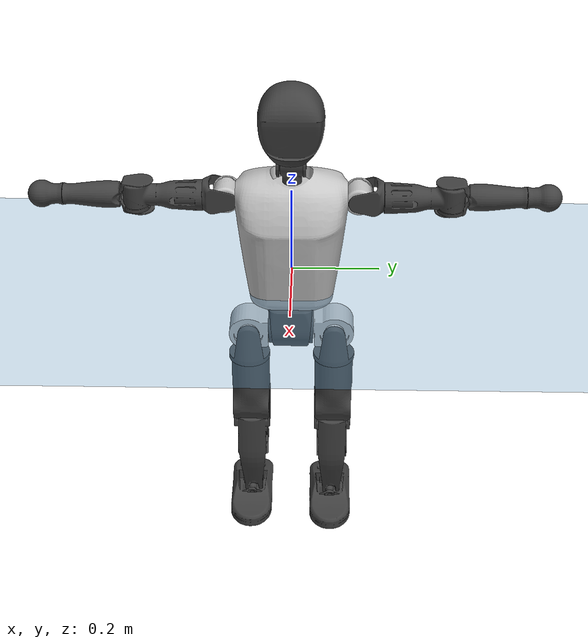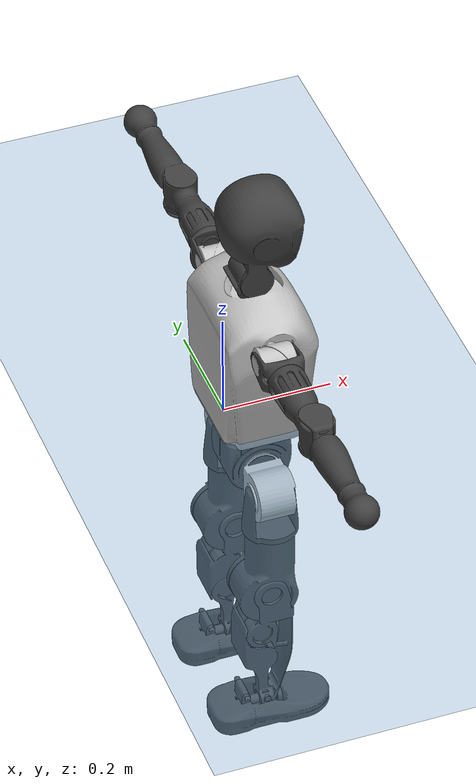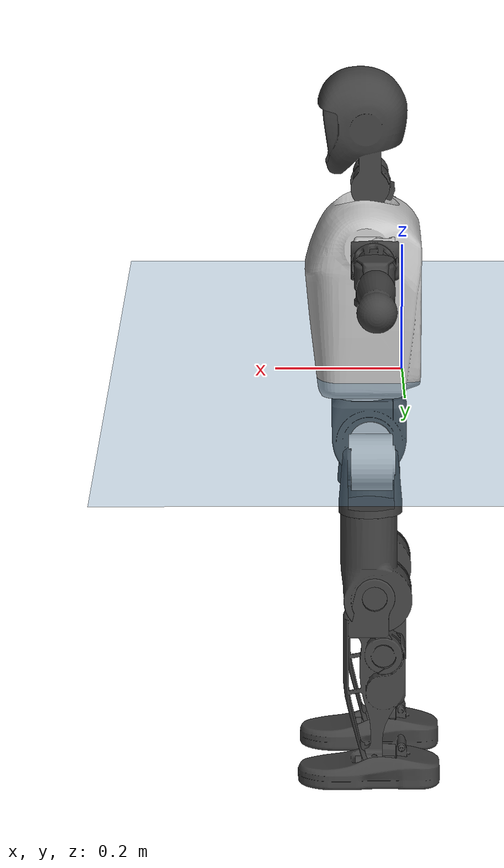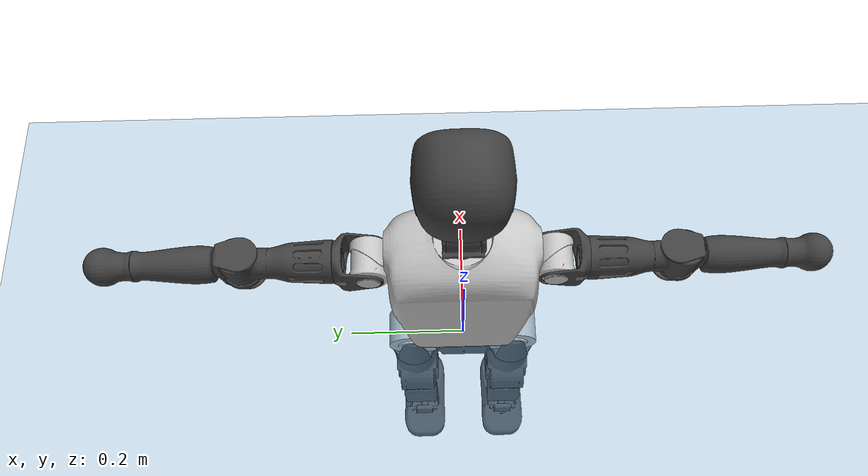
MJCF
<mujoco model="T1">
  <compiler angle="radian" assetdir="assets" balanceinertia="true" inertiafromgeom="false"/>

  <option timestep="0.005" density="1.2" viscosity="2e-05"/>

  <size nkey="1"/>

  <visual>
    <quality shadowsize="8192"/>
    <map shadowclip="0.5"/>
  </visual>

  <default>
    <default class="/">
      <joint armature="0.01" damping="0.01" frictionloss="0.1"/>
      <geom contype="0" conaffinity="0" group="1" solref="-1000 -80"/>
      <site size="0.01 0.005 0.005" group="5"/>
      <general forcelimited="true" biastype="affine" gainprm="25" biasprm="0 -25 -0.6"/>
      <default class="t1">
        <geom rgba="0.25 0.25 0.25 1"/>
        <default class="visual">
          <geom type="mesh" group="2"/>
        </default>
        <default class="collision">
          <geom group="3"/>
        </default>
        <default class="foot">
          <geom size="0.1115 0.05 0.015" type="box" condim="6" group="4" priority="1" solimp="0.015 1 0.015"/>
        </default>
        <default class="reward_collision_sphere">
          <geom group="5" rgba="1 0 0 1"/>
        </default>
      </default>
    </default>
  </default>

  <asset>
    <texture type="skybox" colorspace="auto" name="//unnamed_texture_0" builtin="gradient" rgb1="0.95 0.95 0.95" rgb2="0.95 0.95 0.95" width="100" height="600"/>
    <texture type="2d" colorspace="auto" name="texplane" builtin="checker" rgb1="0.345 0.575 0.748" rgb2="0.345 0.575 0.748" markrgb="1 1 1" width="512" height="512"/>
    <material name="MatPlane" class="/" texture="texplane" texuniform="true" texrepeat="2 2" specular="0.9"/>
    <mesh name="Trunk" class="/" file="Trunk.stl"/>
    <mesh name="H1" class="/" file="H1.stl"/>
    <mesh name="H2" class="/" file="H2.stl"/>
    <mesh name="AL1" class="/" file="AL1.stl"/>
    <mesh name="AL2" class="/" file="AL2.stl"/>
    <mesh name="AL3" class="/" file="AL3.stl"/>
    <mesh name="left_hand_link" class="/" file="left_hand_link.stl"/>
    <mesh name="AR1" class="/" file="AR1.stl"/>
    <mesh name="AR2" class="/" file="AR2.stl"/>
    <mesh name="AR3" class="/" file="AR3.stl"/>
    <mesh name="right_hand_link" class="/" file="right_hand_link.stl"/>
    <mesh name="Waist" class="/" file="Waist.stl"/>
    <mesh name="Hip_Pitch_Left" class="/" file="Hip_Pitch_Left.stl"/>
    <mesh name="Hip_Roll_Left" class="/" file="Hip_Roll_Left.stl"/>
    <mesh name="Hip_Yaw_Left" class="/" file="Hip_Yaw_Left.stl"/>
    <mesh name="Shank_Left" class="/" file="Shank_Left.stl"/>
    <mesh name="Ankle_Cross_Left" class="/" file="Ankle_Cross_Left.stl"/>
    <mesh name="left_foot_link" class="/" file="left_foot_link.stl"/>
    <mesh name="Hip_Pitch_Right" class="/" file="Hip_Pitch_Right.stl"/>
    <mesh name="Hip_Roll_Right" class="/" file="Hip_Roll_Right.stl"/>
    <mesh name="Hip_Yaw_Right" class="/" file="Hip_Yaw_Right.stl"/>
    <mesh name="Shank_Right" class="/" file="Shank_Right.stl"/>
    <mesh name="Ankle_Cross_Right" class="/" file="Ankle_Cross_Right.stl"/>
    <mesh name="right_foot_link" class="/" file="right_foot_link.stl"/>
  </asset>

  <worldbody>
    <geom name="floor" class="/" size="100 100 0.125" type="plane" group="0" material="MatPlane"/>
    <light name="toplight_shadow" class="/" pos="0 0 5" dir="0.0990148 0.0990148 -0.990148" type="directional" ambient="0.04 0.04 0.04" diffuse="0.55 0.55 0.55" specular="0.12 0.12 0.12"/>
    <light name="toplight_fill" class="/" pos="0 0 5" dir="0.0990148 0.0990148 -0.990148" type="directional" castshadow="false" ambient="0.04 0.04 0.04" diffuse="0.3 0.3 0.3" specular="0.08 0.08 0.08"/>
    <body name="trunk" childclass="t1" pos="0.000458746 0.000621121 0.00162763" quat="1 -0.000224129 7.48003e-05 6.92929e-06">
      <inertial pos="0.0419917 -0.00261894 0.10098" quat="0.999948 0.000394935 -0.0101272 0.0011171" mass="8.3377" diaginertia="0.0292243 0.0537399 0.0454564"/>
      <joint name="//unnamed_joint_0" type="free" armature="0" damping="0" frictionloss="0"/>
      <geom name="//unnamed_geom_1" class="visual" rgba="0.76 0.76 0.76 1" mesh="Trunk"/>
      <geom name="//unnamed_geom_2" class="collision" size="0.0671705 0.0895607 0.134341" pos="0.0475796 0 0.115696" type="box"/>
      <geom name="//unnamed_geom_3" class="reward_collision_sphere" size="0.102995" pos="0.0475796 0 0.096413"/>
      <geom name="//unnamed_geom_4" class="reward_collision_sphere" size="0.0134341" pos="0.0475796 0.0790242 0"/>
      <geom name="//unnamed_geom_5" class="reward_collision_sphere" size="0.0134341" pos="0.0475796 -0.0790242 0"/>
      <geom name="//unnamed_geom_6" class="reward_collision_sphere" size="0.0134341" pos="0.0475796 0.0994775 0.173543"/>
      <geom name="//unnamed_geom_7" class="reward_collision_sphere" size="0.0134341" pos="0.0475796 -0.0994775 0.173543"/>
      <site name="imu" pos="-0.0135314 0.0135301 -0.0134985" size="0.00895607"/>
      <camera name="track" pos="0 -1.85939 0" quat="0.707107 0.707107 0 0" mode="trackcom"/>
      <camera name="ego_camera" pos="0.0967452 0 0.404935" quat="-0.5 -0.5 0.5 0.5"/>
      <body name="H1" pos="0.0489639 0.000795298 0.234574" quat="0.999999 -0.00121686 -0.000635848 0.000242143">
        <inertial pos="-0.000937884 -0.00130306 0.0546878" quat="0.762425 -0.0124975 0.00476849 0.646938" mass="0.340042" diaginertia="7.60338e-05 0.000158457 0.000129408"/>
        <joint name="AAHead_yaw" pos="0 0 0" axis="0.00522058 0.000233001 0.999986" range="-1.58909 1.55977" armature="0.0102979" damping="0" frictionloss="0.0896376"/>
        <geom name="//unnamed_geom_8" class="visual" mesh="H1"/>
        <body name="H2" pos="0.00213144 -0.00152517 0.0593181" quat="1 -0.000196872 -0.000137765 -3.1604e-05">
          <inertial pos="0.00491749 0.000621844 0.0946985" quat="0.988934 0.102195 -0.0758221 -0.0762712" mass="0.457355" diaginertia="0.000639869 0.00132262 0.00144563"/>
          <joint name="Head_pitch" pos="0 0 0" axis="0.00826257 -0.999953 -0.00513558" stiffness="0.00328724" range="-1.20211 0.327579" armature="0.00879673" damping="0.000422556" frictionloss="0.0917078"/>
          <geom name="//unnamed_geom_9" class="visual" mesh="H2"/>
          <geom name="//unnamed_geom_10" class="collision" size="0.0716485" pos="0.00792994 0 0.106054"/>
          <geom name="//unnamed_geom_11" class="reward_collision_sphere" size="0.0806046" pos="0.0158599 0 0.096413"/>
        </body>
      </body>
      <body name="AL1" pos="0.0450169 0.0994872 0.210527" quat="0.999999 0.00100627 0.000876485 -0.000321022">
        <inertial pos="-0.00018003 0.0439956 4.0481e-05" quat="0.50597 0.493846 -0.502009 0.498093" mass="0.382688" diaginertia="0.000435922 0.000904853 0.000245287"/>
        <joint name="Left_Shoulder_Pitch" pos="0 0 0" axis="0.000281244 0.999999 0.00114068" range="-3.30889 1.22213" armature="0.00933474" damping="0.0114288" frictionloss="0.0833686"/>
        <geom name="//unnamed_geom_12" class="visual" rgba="0.76 0.76 0.76 1" mesh="AL1"/>
        <body name="AL2" pos="-0.000228847 0.0445276 5.31292e-05" quat="1 -2.01954e-05 6.71995e-05 3.56945e-06">
          <inertial pos="0.00251627 0.0362763 0.00229391" quat="0.487243 0.512972 -0.489168 0.510068" mass="0.121106" diaginertia="0.000128887 0.000236779 0.000151402"/>
          <joint name="Left_Shoulder_Roll" pos="0 0 0" axis="-0.999994 0.00169324 -0.00302672" stiffness="0.00249843" range="-1.51753 1.7945" armature="0.00786039" damping="0" frictionloss="0.090298"/>
          <geom name="//unnamed_geom_13" class="visual" mesh="AL2"/>
          <body name="AL3" pos="0.00280993 0.0569839 -0.00158532" quat="1 -0.000239052 -0.000351537 0.0001693">
            <inertial pos="0.00130729 0.0794169 -0.000210747" quat="0.706187 0.708022 -0.000709564 0.00206539" mass="0.74516" diaginertia="0.00397673 0.00913331 0.000504353"/>
            <joint name="Left_Elbow_Pitch" pos="0 0 0" axis="-0.0131721 -0.999913 0.00089402" range="-2.21888 2.31532" armature="0.00778661" damping="0.00547681" frictionloss="0.0811546"/>
            <geom name="//unnamed_geom_14" class="visual" mesh="AL3"/>
            <geom name="//unnamed_geom_15" class="collision" size="0.0268682 0.0671705" pos="0 0.0464848 0" quat="0.707105 0.707108 0 0" type="cylinder"/>
            <geom name="//unnamed_geom_16" class="reward_collision_sphere" size="0.0322418"/>
            <body name="left_hand_link" pos="-0.00132868 0.139171 0.00257236" quat="1 3.15394e-06 -5.96406e-05 6.74062e-06">
              <inertial pos="-0.000584018 0.101045 0.00100885" quat="0.707865 0.706347 -0.000456509 0.000226113" mass="0.233901" diaginertia="0.00262292 0.00577403 0.000178231"/>
              <joint name="Left_Elbow_Yaw" pos="0 0 0" axis="-0.00185022 -0.00148444 0.999997" range="-2.44792 0.00801814" armature="0.0102802" damping="0.0139944" frictionloss="0.0848415"/>
              <geom name="//unnamed_geom_17" class="visual" mesh="left_hand_link"/>
              <geom name="//unnamed_geom_18" class="collision" size="0.0268682 0.0783656" pos="0 0.120861 0" quat="0.707105 0.707108 0 0" type="cylinder"/>
              <geom name="//unnamed_geom_19" class="reward_collision_sphere" size="0.0447803"/>
              <geom name="//unnamed_geom_20" class="reward_collision_sphere" size="0.0313462" pos="0 0.102267 0"/>
              <geom name="//unnamed_geom_21" class="reward_collision_sphere" size="0.0313462" pos="0 0.199885 0"/>
            </body>
          </body>
        </body>
      </body>
      <body name="AR1" pos="0.0428057 -0.0963537 0.211666" quat="1 -0.000141987 0.000640167 -7.50301e-05">
        <inertial pos="-0.00356291 -0.0426294 0.00175207" quat="0.498598 0.490239 -0.514933 0.495893" mass="0.386275" diaginertia="0.00042909 0.00089836 0.000253837"/>
        <joint name="Right_Shoulder_Pitch" pos="0 0 0" axis="-0.000409082 -0.999996 -0.00279997" stiffness="0.00597001" range="-1.22517 3.3067" armature="0.00914348" damping="0.00892867" frictionloss="0.0813076"/>
        <geom name="//unnamed_geom_22" class="visual" rgba="0.76 0.76 0.76 1" mesh="AR1"/>
        <body name="AR2" pos="0.000436718 -0.0418071 9.69965e-05" quat="1 0.000453842 0.000251134 -0.000213716">
          <inertial pos="0.00223038 -0.0358848 0.00126082" quat="0.512038 0.488182 -0.511634 0.487572" mass="0.114702" diaginertia="0.000126043 0.000247783 0.000148894"/>
          <joint name="Right_Shoulder_Roll" pos="0 0 0" axis="-0.999934 0.0111611 -0.00263295" range="-1.72352 1.62557" armature="0.00810434" damping="0.0142977" frictionloss="0.0859371"/>
          <geom name="//unnamed_geom_23" class="visual" mesh="AR2"/>
          <body name="AR3" pos="5.2991e-05 -0.0553464 -0.00210382" quat="1 8.08959e-05 8.72807e-05 -3.13649e-05">
            <inertial pos="-0.000117309 -0.0821445 0.00243107" quat="0.707283 0.706862 -0.00649089 -0.00738794" mass="0.720261" diaginertia="0.00404274 0.00863554 0.000529552"/>
            <joint name="Right_Elbow_Pitch" pos="0 0 0" axis="0.00138132 0.999998 0.0012293" range="-2.24647 2.22948" armature="0.00912749" damping="0.0194124" frictionloss="0.0891922"/>
            <geom name="//unnamed_geom_24" class="visual" mesh="AR3"/>
            <geom name="//unnamed_geom_25" class="collision" size="0.0268682 0.0671705" pos="0 -0.0464848 0" quat="0.707105 0.707108 0 0" type="cylinder"/>
            <geom name="//unnamed_geom_26" class="reward_collision_sphere" size="0.0322418"/>
            <body name="right_hand_link" pos="0.000366597 -0.136383 0.000183026" quat="1 -4.33387e-05 -0.000167879 -5.72387e-05">
              <inertial pos="-0.000681525 -0.100752 -0.00124269" quat="0.706335 0.707877 0.000154555 -0.000417079" mass="0.23612" diaginertia="0.00251781 0.00562489 0.000174504"/>
              <joint name="Right_Elbow_Yaw" pos="0 0 0" axis="0.00059453 -0.000579165 1" stiffness="0.00054349" range="-0.0146998 2.44588" armature="0.00864602" damping="0.00561076" frictionloss="0.0969589"/>
              <geom name="//unnamed_geom_27" class="visual" mesh="right_hand_link"/>
              <geom name="//unnamed_geom_28" class="collision" size="0.0268682 0.0783656" pos="0 -0.120861 0" quat="0.707105 0.707108 0 0" type="cylinder"/>
              <geom name="//unnamed_geom_29" class="reward_collision_sphere" size="0.0447803"/>
              <geom name="//unnamed_geom_30" class="reward_collision_sphere" size="0.0313462" pos="0 -0.102267 0"/>
              <geom name="//unnamed_geom_31" class="reward_collision_sphere" size="0.0313462" pos="0 -0.199885 0"/>
            </body>
          </body>
        </body>
      </body>
      <body name="Waist" pos="0.0517363 -0.00152591 -0.11093" quat="1 1.45806e-05 -0.000166125 0.000146339">
        <inertial pos="-0.00111341 0.000980953 0.00718549" quat="0.983587 -0.000463926 -0.180419 0.00239516" mass="1.89048" diaginertia="0.00164002 0.00375871 0.00400593"/>
        <joint name="Waist" pos="0 0 0" axis="0.00133432 -0.0118897 0.999928" stiffness="0.00324661" range="-1.58602 1.5841" armature="0.00878733" damping="0.0263761" frictionloss="0.0888591"/>
        <geom name="//unnamed_geom_32" class="visual" mesh="Waist"/>
        <body name="Hip_Pitch_Left" pos="-0.00178586 0.10006 0.00146877" quat="0.999999 -0.0006546 0.000982721 -0.000943722">
          <inertial pos="-0.00138969 -0.00439212 -0.0181736" quat="0.974632 0.223212 0.0162809 0.00185376" mass="0.711591" diaginertia="0.000545663 0.00099211 0.00104292"/>
          <joint name="Left_Hip_Pitch" pos="0 0 0" axis="-0.00120779 0.999998 -0.00128307" range="-1.77845 1.58288" armature="0.00789238" damping="0.0110619" frictionloss="0.101671"/>
          <geom name="//unnamed_geom_33" class="visual" rgba="0.76 0.76 0.76 1" mesh="Hip_Pitch_Left"/>
          <body name="Hip_Roll_Left" pos="0.00333402 -0.000536243 -0.0222257" quat="1 0.00082314 0.000405695 0.000141596">
            <inertial pos="0.00252483 -0.000288588 -0.0544236" quat="0.706649 -0.00635555 -0.00534216 0.707516" mass="0.26825" diaginertia="0.000546529 0.00104288 0.000421933"/>
            <joint name="Left_Hip_Roll" pos="0 0 0" axis="-0.999994 -0.000817682 0.00331604" range="-1.56488 0.212864" armature="0.00968307" damping="0.0207205" frictionloss="0.0889511"/>
            <geom name="//unnamed_geom_34" class="visual" mesh="Hip_Roll_Left"/>
            <geom name="//unnamed_geom_35" class="reward_collision_sphere" size="0.0492584"/>
            <body name="Hip_Yaw_Left" pos="0.000185833 0.000232121 -0.0784537" quat="1 1.37399e-05 -5.06715e-05 9.77637e-05">
              <inertial pos="-0.00461073 0.00206255 -0.0834169" quat="0.699219 -0.0305884 -0.0315169 0.713558" mass="1.57411" diaginertia="0.00818809 0.0178306 0.00216753"/>
              <joint name="Left_Hip_Yaw" pos="0 0 0" axis="0.00557288 0.00295261 -0.99998" range="-1.01202 0.99631" armature="0.00894783" damping="0.00741218" frictionloss="0.096603"/>
              <geom name="//unnamed_geom_36" class="visual" mesh="Hip_Yaw_Left"/>
              <geom name="//unnamed_geom_37" class="collision" size="0.0447803 0.0716485" type="cylinder"/>
              <body name="Shank_Left" pos="-0.00876332 -0.00149773 -0.130838" quat="0.999999 0.000703226 -0.000270213 0.000832019">
                <inertial pos="-0.00490402 -0.000616475 -0.120142" quat="0.997895 -0.00298325 -0.0323402 0.0561312" mass="1.27535" diaginertia="0.0110449 0.0245603 0.00156733"/>
                <joint name="Left_Knee_Pitch" pos="0 0 0" axis="-0.00189841 0.999973 -0.00707472" range="-0.00981917 2.29005" armature="0.00995253" damping="0.00219724" frictionloss="0.0899727"/>
                <geom name="//unnamed_geom_38" class="visual" mesh="Shank_Left"/>
                <geom name="//unnamed_geom_39" class="collision" size="0.0447803 0.0671705" pos="0 0 -0.115696" type="cylinder"/>
                <geom name="//unnamed_geom_40" class="reward_collision_sphere" size="0.0582144"/>
                <body name="Ankle_Cross_Left" pos="0.00065473 -0.0024083 -0.269194" quat="1 -7.26717e-05 -0.000118655 -0.000126905">
                  <inertial pos="-0.00244845 0.000509823 -0.00850686" quat="0.447573 0.55662 0.547178 0.436403" mass="0.0509543" diaginertia="9.22496e-06 1.7614e-05 9.3151e-06"/>
                  <joint name="Left_Ankle_Pitch" pos="0 0 0" axis="0.000741661 1 -0.000307252" stiffness="0.00637698" range="-0.92323 0.403685" armature="0.00952575" damping="0" frictionloss="0.0949576"/>
                  <geom name="//unnamed_geom_41" class="visual" mesh="Ankle_Cross_Left"/>
                  <body name="left_foot_link" pos="-0.00184043 -0.000430867 -0.0143877" quat="0.999999 0.00137141 -0.0001728 0.00013789">
                    <inertial pos="0.000889614 -0.00108875 -0.00875381" quat="-0.010675 0.6182 -0.00133859 0.785947" mass="0.505869" diaginertia="0.000870807 0.00172028 0.00194067"/>
                    <joint name="Left_Ankle_Roll" pos="0 0 0" axis="-0.99996 0.00885386 -0.00143232" stiffness="0.00758825" range="-0.434494 0.494195" armature="0.00916001" damping="0.0109513" frictionloss="0.100786"/>
                    <geom name="//unnamed_geom_42" class="visual" mesh="left_foot_link"/>
                    <geom name="left_foot" class="foot" size="0.104308 0.0411786 0.0147184" pos="0.00792994 0 -0.0144619"/>
                    <geom name="//unnamed_geom_44" class="reward_collision_sphere" size="0.0465715" pos="0.00792994 0 -0.0144619"/>
                    <geom name="//unnamed_geom_45" class="reward_collision_sphere" size="0.0268682" pos="0.0753344 -0.021383 -0.0144619"/>
                    <geom name="//unnamed_geom_46" class="reward_collision_sphere" size="0.0268682" pos="-0.0555096 -0.021383 -0.0144619"/>
                    <site name="left_foot" class="foot" pos="0.00792994 0 -0.0144619" size="0.00895607"/>
                  </body>
                </body>
              </body>
            </body>
          </body>
        </body>
        <body name="Hip_Pitch_Right" pos="-0.000394932 -0.0982343 0.00026961" quat="1 0.000168233 7.98812e-05 1.63131e-05">
          <inertial pos="0.000782327 0.00726172 -0.01757" quat="0.972678 -0.232141 0.00202018 -0.00188324" mass="0.710988" diaginertia="0.000548431 0.000990597 0.00101352"/>
          <joint name="Right_Hip_Pitch" pos="0 0 0" axis="-4.44499e-05 -1 8.09997e-08" stiffness="0.000116415" range="-1.56342 1.77832" armature="0.00886726" damping="0.00881689" frictionloss="0.0893466"/>
          <geom name="//unnamed_geom_47" class="visual" rgba="0.76 0.76 0.76 1" mesh="Hip_Pitch_Right"/>
          <body name="Hip_Roll_Right" pos="0.00169703 0.000653745 -0.0217456" quat="1 0.000138981 0.000150604 -3.34497e-05">
            <inertial pos="0.00130201 0.000805848 -0.0519059" quat="0.711675 -0.0126894 -0.00153307 0.702393" mass="0.265136" diaginertia="0.000542924 0.00104538 0.000409455"/>
            <joint name="Right_Hip_Roll" pos="0 0 0" axis="-0.999999 0.00103095 0.000348698" stiffness="0.00290099" range="-0.180319 1.58127" armature="0.00846417" damping="0.0084383" frictionloss="0.0885562"/>
            <geom name="//unnamed_geom_48" class="visual" mesh="Hip_Roll_Right"/>
            <geom name="//unnamed_geom_49" class="reward_collision_sphere" size="0.0492584"/>
            <body name="Hip_Yaw_Right" pos="-0.00229151 0.00203963 -0.0791076" quat="1 -0.00026006 -2.64482e-05 0.000317806">
              <inertial pos="-0.00757991 -0.000978908 -0.0887522" quat="0.72139 -0.0361545 -0.0370666 0.690591" mass="1.58668" diaginertia="0.00803028 0.017278 0.00212155"/>
              <joint name="Right_Hip_Yaw" pos="0 0 0" axis="-0.00221035 -0.000266076 -0.999998" range="-0.953252 0.979639" armature="0.00892681" damping="0.00842121" frictionloss="0.0885515"/>
              <geom name="//unnamed_geom_50" class="visual" mesh="Hip_Yaw_Right"/>
              <geom name="//unnamed_geom_51" class="collision" size="0.0447803 0.0716485" type="cylinder"/>
              <body name="Shank_Right" pos="-0.0107886 0.00141977 -0.127279" quat="1 0.000105676 -3.80265e-05 2.99538e-05">
                <inertial pos="-0.00213021 -0.00133664 -0.118419" quat="0.998787 0.00526611 -0.0318593 -0.0371679" mass="1.21809" diaginertia="0.0107089 0.0242944 0.00158484"/>
                <joint name="Right_Knee_Pitch" pos="0 0 0" axis="0.0004898 -1 0.000717171" range="-2.35165 -0.0182265" armature="0.00954976" damping="0" frictionloss="0.0995755"/>
                <geom name="//unnamed_geom_52" class="visual" mesh="Shank_Right"/>
                <geom name="//unnamed_geom_53" class="collision" size="0.0447803 0.0671705" pos="0 0 -0.115696" type="cylinder"/>
                <geom name="//unnamed_geom_54" class="reward_collision_sphere" size="0.0582144"/>
                <body name="Ankle_Cross_Right" pos="4.31807e-05 -0.00343317 -0.269592" quat="0.999999 -9.33349e-05 -0.00103304 -0.000931361">
                  <inertial pos="-0.00181031 -0.00017288 -0.00698998" quat="0.442824 0.552086 0.551905 0.441032" mass="0.052694" diaginertia="8.77428e-06 1.7857e-05 9.49017e-06"/>
                  <joint name="Right_Ankle_Pitch" pos="0 0 0" axis="0.000802917 -0.999988 0.00487897" range="-0.360517 0.923248" armature="0.00886292" damping="0.0186022" frictionloss="0.0902468"/>
                  <geom name="//unnamed_geom_55" class="visual" mesh="Ankle_Cross_Right"/>
                  <body name="right_foot_link" pos="0.000112383 -0.000955631 -0.012648" quat="0.999999 -0.00081544 0.000313529 -0.00075391">
                    <inertial pos="-0.00224456 0.000577815 -0.00898249" quat="-0.00266836 0.62133 -0.00281388 0.783539" mass="0.491846" diaginertia="0.000815709 0.0016181 0.00183038"/>
                    <joint name="Right_Ankle_Roll" pos="0 0 0" axis="-0.999997 0.000905027 -0.00218478" range="-0.418014 0.428659" armature="0.00864893" damping="0.00383787" frictionloss="0.0847793"/>
                    <geom name="//unnamed_geom_56" class="visual" mesh="right_foot_link"/>
                    <geom name="right_foot" class="foot" size="0.102623 0.043029 0.0138325" pos="0.00792994 0 -0.0144619"/>
                    <geom name="//unnamed_geom_58" class="reward_collision_sphere" size="0.0358243"/>
                    <geom name="//unnamed_geom_59" class="reward_collision_sphere" size="0.0268682" pos="0.00792994 0 -0.0144619"/>
                    <geom name="//unnamed_geom_60" class="reward_collision_sphere" size="0.0268682" pos="0.0753344 0.021383 -0.0144619"/>
                    <geom name="//unnamed_geom_61" class="reward_collision_sphere" size="0.0268682" pos="-0.0555096 0.021383 -0.0144619"/>
                    <site name="right_foot" class="foot" pos="0.00792994 0 -0.0144619" size="0.00895607"/>
                  </body>
                </body>
              </body>
            </body>
          </body>
        </body>
      </body>
    </body>
  </worldbody>

  <contact>
    <pair class="/" geom1="floor" geom2="left_foot" name="//unnamed_contact_0"/>
    <pair class="/" geom1="floor" geom2="right_foot" name="//unnamed_contact_1"/>
  </contact>

  <actuator>
    <general name="AAHead_yaw" class="/" joint="AAHead_yaw" forcerange="-6.46264 6.46264" gainprm="20.8197" biasprm="0 -20.8197 -0.51884"/>
    <general name="Head_pitch" class="/" joint="Head_pitch" forcerange="-6.01858 6.01858" gainprm="20.8197" biasprm="0 -20.8197 -0.51884"/>
    <general name="Left_Shoulder_Pitch" class="/" joint="Left_Shoulder_Pitch" forcerange="-15.819 15.819" gainprm="20.8197" biasprm="0 -20.8197 -0.51884"/>
    <general name="Left_Shoulder_Roll" class="/" joint="Left_Shoulder_Roll" forcerange="-15.5429 15.5429" gainprm="20.8197" biasprm="0 -20.8197 -0.51884"/>
    <general name="Left_Elbow_Pitch" class="/" joint="Left_Elbow_Pitch" forcerange="-14.5296 14.5296" gainprm="20.8197" biasprm="0 -20.8197 -0.51884"/>
    <general name="Left_Elbow_Yaw" class="/" joint="Left_Elbow_Yaw" forcerange="-17.7925 17.7925" gainprm="20.8197" biasprm="0 -20.8197 -0.51884"/>
    <general name="Right_Shoulder_Pitch" class="/" joint="Right_Shoulder_Pitch" forcerange="-17.8245 17.8245" gainprm="20.8197" biasprm="0 -20.8197 -0.51884"/>
    <general name="Right_Shoulder_Roll" class="/" joint="Right_Shoulder_Roll" forcerange="-16.2217 16.2217" gainprm="20.8197" biasprm="0 -20.8197 -0.51884"/>
    <general name="Right_Elbow_Pitch" class="/" joint="Right_Elbow_Pitch" forcerange="-16.2263 16.2263" gainprm="20.8197" biasprm="0 -20.8197 -0.51884"/>
    <general name="Right_Elbow_Yaw" class="/" joint="Right_Elbow_Yaw" forcerange="-15.8143 15.8143" gainprm="20.8197" biasprm="0 -20.8197 -0.51884"/>
    <general name="Waist" class="/" joint="Waist" forcerange="-26.4654 26.4654" gainprm="20.8197" biasprm="0 -20.8197 -0.51884"/>
    <general name="Left_Hip_Pitch" class="/" joint="Left_Hip_Pitch" forcerange="-40.5734 40.5734" gainprm="20.8197" biasprm="0 -20.8197 -0.51884"/>
    <general name="Left_Hip_Roll" class="/" joint="Left_Hip_Roll" forcerange="-29.5662 29.5662" gainprm="20.8197" biasprm="0 -20.8197 -0.51884"/>
    <general name="Left_Hip_Yaw" class="/" joint="Left_Hip_Yaw" forcerange="-24.1788 24.1788" gainprm="20.8197" biasprm="0 -20.8197 -0.51884"/>
    <general name="Left_Knee_Pitch" class="/" joint="Left_Knee_Pitch" forcerange="-48.0815 48.0815" gainprm="20.8197" biasprm="0 -20.8197 -0.51884"/>
    <general name="Left_Ankle_Pitch" class="/" joint="Left_Ankle_Pitch" forcerange="-17.9516 17.9516" gainprm="20.8197" biasprm="0 -20.8197 -0.51884"/>
    <general name="Left_Ankle_Roll" class="/" joint="Left_Ankle_Roll" forcerange="-13.3644 13.3644" gainprm="20.8197" biasprm="0 -20.8197 -0.51884"/>
    <general name="Right_Hip_Pitch" class="/" joint="Right_Hip_Pitch" forcerange="-39.1749 39.1749" gainprm="20.8197" biasprm="0 -20.8197 -0.51884"/>
    <general name="Right_Hip_Roll" class="/" joint="Right_Hip_Roll" forcerange="-26.8735 26.8735" gainprm="20.8197" biasprm="0 -20.8197 -0.51884"/>
    <general name="Right_Hip_Yaw" class="/" joint="Right_Hip_Yaw" forcerange="-27.6286 27.6286" gainprm="20.8197" biasprm="0 -20.8197 -0.51884"/>
    <general name="Right_Knee_Pitch" class="/" joint="Right_Knee_Pitch" forcerange="-53.639 53.639" gainprm="20.8197" biasprm="0 -20.8197 -0.51884"/>
    <general name="Right_Ankle_Pitch" class="/" joint="Right_Ankle_Pitch" forcerange="-16.2236 16.2236" gainprm="20.8197" biasprm="0 -20.8197 -0.51884"/>
    <general name="Right_Ankle_Roll" class="/" joint="Right_Ankle_Roll" forcerange="-13.4916 13.4916" gainprm="20.8197" biasprm="0 -20.8197 -0.51884"/>
  </actuator>

  <sensor>
    <gyro site="imu" name="imu_angular_velocity"/>
    <velocimeter site="imu" name="imu_linear_velocity"/>
    <framelinvel objtype="site" objname="left_foot" name="left_foot_global_linear_velocity"/>
    <framelinvel objtype="site" objname="right_foot" name="right_foot_global_linear_velocity"/>
  </sensor>

  <keyframe>
    <key name="home" qpos="0 0 0.6385 1 0 0 0 0 0 0 1.4 0 -0.4 0 -1.4 0 0.4 0 -0.4 0 0 0.8 -0.4 0 0.4 0 0 -0.8 0.4 0"/>
  </keyframe>
</mujoco>
